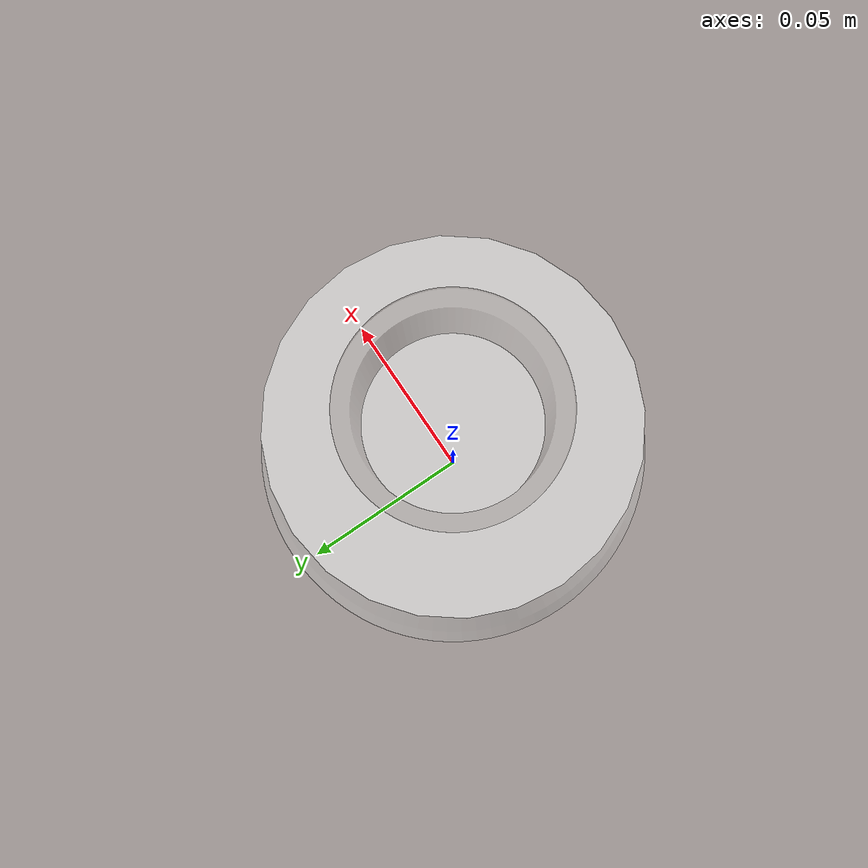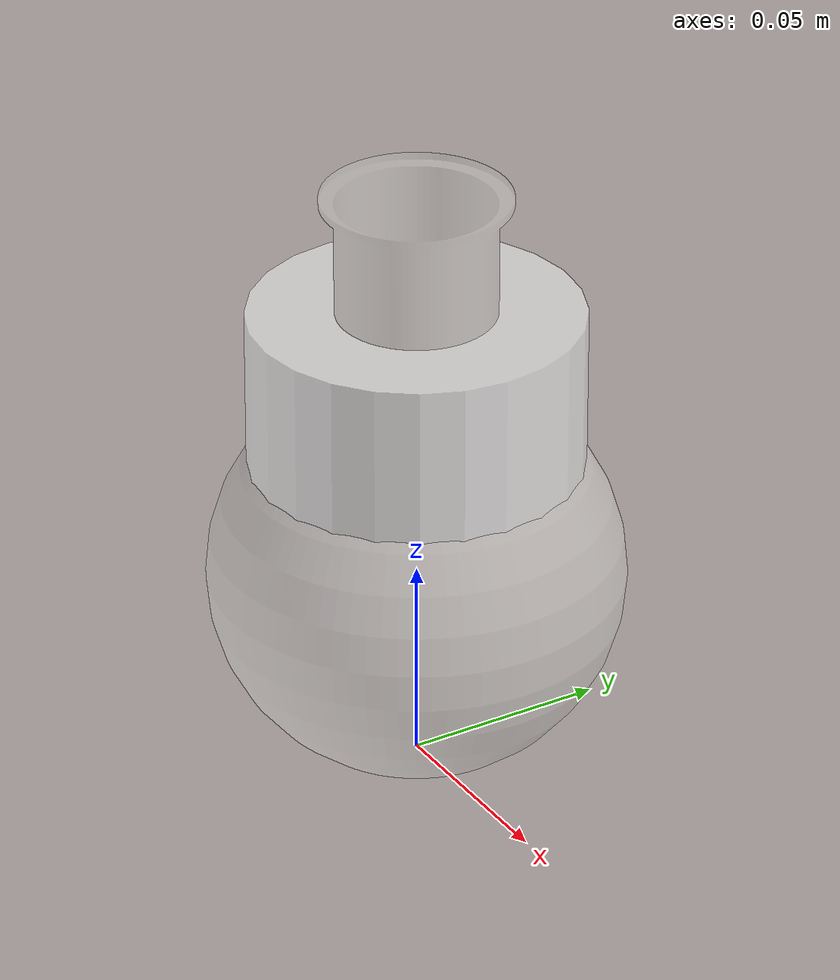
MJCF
<?xml version="1.0" ?>
<mujoco model="florence_flask">
  <asset>
    <material name="glass_florence_flask" specular="0.4" shininess="0.001" rgba="1 1 1 0.3"/>
    <mesh file="florence_flask.obj" scale="0.022874139257576805 0.022874139257576805 0.022874139257576805"/>
    <mesh file="florence_flask/florence_flask_collision_0.obj" scale="0.022874139257576805 0.022874139257576805 0.022874139257576805"/>
    <mesh file="florence_flask/florence_flask_collision_1.obj" scale="0.022874139257576805 0.022874139257576805 0.022874139257576805"/>
    <mesh file="florence_flask/florence_flask_collision_2.obj" scale="0.022874139257576805 0.022874139257576805 0.022874139257576805"/>
    <mesh file="florence_flask/florence_flask_collision_3.obj" scale="0.022874139257576805 0.022874139257576805 0.022874139257576805"/>
    <mesh file="florence_flask/florence_flask_collision_4.obj" scale="0.022874139257576805 0.022874139257576805 0.022874139257576805"/>
    <mesh file="florence_flask/florence_flask_collision_5.obj" scale="0.022874139257576805 0.022874139257576805 0.022874139257576805"/>
    <mesh file="florence_flask/florence_flask_collision_6.obj" scale="0.022874139257576805 0.022874139257576805 0.022874139257576805"/>
    <mesh file="florence_flask/florence_flask_collision_7.obj" scale="0.022874139257576805 0.022874139257576805 0.022874139257576805"/>
    <mesh file="florence_flask/florence_flask_collision_8.obj" scale="0.022874139257576805 0.022874139257576805 0.022874139257576805"/>
    <mesh file="florence_flask/florence_flask_collision_9.obj" scale="0.022874139257576805 0.022874139257576805 0.022874139257576805"/>
    <mesh file="florence_flask/florence_flask_collision_10.obj" scale="0.022874139257576805 0.022874139257576805 0.022874139257576805"/>
    <mesh file="florence_flask/florence_flask_collision_11.obj" scale="0.022874139257576805 0.022874139257576805 0.022874139257576805"/>
    <mesh file="florence_flask/florence_flask_collision_12.obj" scale="0.022874139257576805 0.022874139257576805 0.022874139257576805"/>
    <mesh file="florence_flask/florence_flask_collision_13.obj" scale="0.022874139257576805 0.022874139257576805 0.022874139257576805"/>
    <mesh file="florence_flask/florence_flask_collision_14.obj" scale="0.022874139257576805 0.022874139257576805 0.022874139257576805"/>
    <mesh file="florence_flask/florence_flask_collision_15.obj" scale="0.022874139257576805 0.022874139257576805 0.022874139257576805"/>
    <mesh file="florence_flask/florence_flask_collision_16.obj" scale="0.022874139257576805 0.022874139257576805 0.022874139257576805"/>
    <mesh file="florence_flask/florence_flask_collision_17.obj" scale="0.022874139257576805 0.022874139257576805 0.022874139257576805"/>
    <mesh file="florence_flask/florence_flask_collision_18.obj" scale="0.022874139257576805 0.022874139257576805 0.022874139257576805"/>
    <mesh file="florence_flask/florence_flask_collision_19.obj" scale="0.022874139257576805 0.022874139257576805 0.022874139257576805"/>
    <mesh file="florence_flask/florence_flask_collision_20.obj" scale="0.022874139257576805 0.022874139257576805 0.022874139257576805"/>
    <mesh file="florence_flask/florence_flask_collision_21.obj" scale="0.022874139257576805 0.022874139257576805 0.022874139257576805"/>
    <mesh file="florence_flask/florence_flask_collision_22.obj" scale="0.022874139257576805 0.022874139257576805 0.022874139257576805"/>
    <mesh file="florence_flask/florence_flask_collision_23.obj" scale="0.022874139257576805 0.022874139257576805 0.022874139257576805"/>
    <mesh file="florence_flask/florence_flask_collision_24.obj" scale="0.022874139257576805 0.022874139257576805 0.022874139257576805"/>
    <mesh file="florence_flask/florence_flask_collision_25.obj" scale="0.022874139257576805 0.022874139257576805 0.022874139257576805"/>
    <mesh file="florence_flask/florence_flask_collision_26.obj" scale="0.022874139257576805 0.022874139257576805 0.022874139257576805"/>
    <mesh file="florence_flask/florence_flask_collision_27.obj" scale="0.022874139257576805 0.022874139257576805 0.022874139257576805"/>
    <mesh file="florence_flask/florence_flask_collision_28.obj" scale="0.022874139257576805 0.022874139257576805 0.022874139257576805"/>
    <mesh file="florence_flask/florence_flask_collision_29.obj" scale="0.022874139257576805 0.022874139257576805 0.022874139257576805"/>
    <mesh file="florence_flask/florence_flask_collision_30.obj" scale="0.022874139257576805 0.022874139257576805 0.022874139257576805"/>
    <mesh file="florence_flask/florence_flask_collision_31.obj" scale="0.022874139257576805 0.022874139257576805 0.022874139257576805"/>
    <mesh file="florence_flask/florence_flask_collision_32.obj" scale="0.022874139257576805 0.022874139257576805 0.022874139257576805"/>
    <mesh file="florence_flask/florence_flask_collision_33.obj" scale="0.022874139257576805 0.022874139257576805 0.022874139257576805"/>
    <mesh file="florence_flask/florence_flask_collision_34.obj" scale="0.022874139257576805 0.022874139257576805 0.022874139257576805"/>
    <mesh file="florence_flask/florence_flask_collision_35.obj" scale="0.022874139257576805 0.022874139257576805 0.022874139257576805"/>
    <mesh file="florence_flask/florence_flask_collision_36.obj" scale="0.022874139257576805 0.022874139257576805 0.022874139257576805"/>
    <mesh file="florence_flask/florence_flask_collision_37.obj" scale="0.022874139257576805 0.022874139257576805 0.022874139257576805"/>
    <mesh file="florence_flask/florence_flask_collision_38.obj" scale="0.022874139257576805 0.022874139257576805 0.022874139257576805"/>
    <mesh file="florence_flask/florence_flask_collision_39.obj" scale="0.022874139257576805 0.022874139257576805 0.022874139257576805"/>
    <mesh file="florence_flask/florence_flask_collision_40.obj" scale="0.022874139257576805 0.022874139257576805 0.022874139257576805"/>
    <mesh file="florence_flask/florence_flask_collision_41.obj" scale="0.022874139257576805 0.022874139257576805 0.022874139257576805"/>
    <mesh file="florence_flask/florence_flask_collision_42.obj" scale="0.022874139257576805 0.022874139257576805 0.022874139257576805"/>
    <mesh file="florence_flask/florence_flask_collision_43.obj" scale="0.022874139257576805 0.022874139257576805 0.022874139257576805"/>
    <mesh file="florence_flask/florence_flask_collision_44.obj" scale="0.022874139257576805 0.022874139257576805 0.022874139257576805"/>
    <mesh file="florence_flask/florence_flask_collision_45.obj" scale="0.022874139257576805 0.022874139257576805 0.022874139257576805"/>
    <mesh file="florence_flask/florence_flask_collision_46.obj" scale="0.022874139257576805 0.022874139257576805 0.022874139257576805"/>
    <mesh file="florence_flask/florence_flask_collision_47.obj" scale="0.022874139257576805 0.022874139257576805 0.022874139257576805"/>
    <mesh file="florence_flask/florence_flask_collision_48.obj" scale="0.022874139257576805 0.022874139257576805 0.022874139257576805"/>
    <mesh file="florence_flask/florence_flask_collision_49.obj" scale="0.022874139257576805 0.022874139257576805 0.022874139257576805"/>
    <mesh file="florence_flask/florence_flask_collision_50.obj" scale="0.022874139257576805 0.022874139257576805 0.022874139257576805"/>
    <mesh file="florence_flask/florence_flask_collision_51.obj" scale="0.022874139257576805 0.022874139257576805 0.022874139257576805"/>
    <mesh file="florence_flask/florence_flask_collision_52.obj" scale="0.022874139257576805 0.022874139257576805 0.022874139257576805"/>
    <mesh file="florence_flask/florence_flask_collision_53.obj" scale="0.022874139257576805 0.022874139257576805 0.022874139257576805"/>
    <mesh file="florence_flask/florence_flask_collision_54.obj" scale="0.022874139257576805 0.022874139257576805 0.022874139257576805"/>
    <mesh file="florence_flask/florence_flask_collision_55.obj" scale="0.022874139257576805 0.022874139257576805 0.022874139257576805"/>
    <mesh file="florence_flask/florence_flask_collision_56.obj" scale="0.022874139257576805 0.022874139257576805 0.022874139257576805"/>
    <mesh file="florence_flask/florence_flask_collision_57.obj" scale="0.022874139257576805 0.022874139257576805 0.022874139257576805"/>
    <mesh file="florence_flask/florence_flask_collision_58.obj" scale="0.022874139257576805 0.022874139257576805 0.022874139257576805"/>
    <mesh file="florence_flask/florence_flask_collision_59.obj" scale="0.022874139257576805 0.022874139257576805 0.022874139257576805"/>
    <mesh file="florence_flask/florence_flask_collision_60.obj" scale="0.022874139257576805 0.022874139257576805 0.022874139257576805"/>
    <mesh file="florence_flask/florence_flask_collision_61.obj" scale="0.022874139257576805 0.022874139257576805 0.022874139257576805"/>
    <mesh file="florence_flask/florence_flask_collision_62.obj" scale="0.022874139257576805 0.022874139257576805 0.022874139257576805"/>
    <mesh file="florence_flask/florence_flask_collision_63.obj" scale="0.022874139257576805 0.022874139257576805 0.022874139257576805"/>
    <mesh file="florence_flask/florence_flask_collision_64.obj" scale="0.022874139257576805 0.022874139257576805 0.022874139257576805"/>
    <mesh file="florence_flask/florence_flask_collision_65.obj" scale="0.022874139257576805 0.022874139257576805 0.022874139257576805"/>
    <mesh file="florence_flask/florence_flask_collision_66.obj" scale="0.022874139257576805 0.022874139257576805 0.022874139257576805"/>
    <mesh file="florence_flask/florence_flask_collision_67.obj" scale="0.022874139257576805 0.022874139257576805 0.022874139257576805"/>
    <mesh file="florence_flask/florence_flask_collision_68.obj" scale="0.022874139257576805 0.022874139257576805 0.022874139257576805"/>
    <mesh file="florence_flask/florence_flask_collision_69.obj" scale="0.022874139257576805 0.022874139257576805 0.022874139257576805"/>
    <mesh file="florence_flask/florence_flask_collision_70.obj" scale="0.022874139257576805 0.022874139257576805 0.022874139257576805"/>
    <mesh file="florence_flask/florence_flask_collision_71.obj" scale="0.022874139257576805 0.022874139257576805 0.022874139257576805"/>
    <mesh file="florence_flask/florence_flask_collision_72.obj" scale="0.022874139257576805 0.022874139257576805 0.022874139257576805"/>
    <mesh file="florence_flask/florence_flask_collision_73.obj" scale="0.022874139257576805 0.022874139257576805 0.022874139257576805"/>
    <mesh file="florence_flask/florence_flask_collision_74.obj" scale="0.022874139257576805 0.022874139257576805 0.022874139257576805"/>
    <mesh file="florence_flask/florence_flask_collision_75.obj" scale="0.022874139257576805 0.022874139257576805 0.022874139257576805"/>
    <mesh file="florence_flask/florence_flask_collision_76.obj" scale="0.022874139257576805 0.022874139257576805 0.022874139257576805"/>
      <material name="CaSO4" rgba="1 1 1 0.7"/>
    <material name="CuCl2" rgba="0.141 1.0 0.174 0.4"/>
    <material name="CuSO4" rgba="0 0.45 1 0.4"/>
    <material name="FeCl3" rgba="0.6475 0.5686 0.023 0.4"/>
    <material name="KMnO4" rgba="0.5 0 0.5 0.4"/>
    <material name="I2" rgba="0.3 0.13 0.0 0.4"/>
    <material name="K2CrO4" rgba="0.57 0.12 0.013 0.4"/>
    <material name="NaCl" rgba="1 1 1 0.3"/>
</asset>
  <worldbody>
    <body name="florence_flask">
      <inertial pos="0 0 0.075000" mass="0.02" diaginertia="0.0008 0.0008 0.0005"/>
      <geom material="glass_florence_flask" mesh="florence_flask" class="visual"/>
      <geom mesh="florence_flask_collision_0"  class="collision"/>
      <geom mesh="florence_flask_collision_1"  class="collision"/>
      <geom mesh="florence_flask_collision_2"  class="collision"/>
      <geom mesh="florence_flask_collision_3"  class="collision"/>
      <geom mesh="florence_flask_collision_4"  class="collision"/>
      <geom mesh="florence_flask_collision_5"  class="collision"/>
      <geom mesh="florence_flask_collision_6"  class="collision"/>
      <geom mesh="florence_flask_collision_7"  class="collision"/>
      <geom mesh="florence_flask_collision_8"  class="collision"/>
      <geom mesh="florence_flask_collision_9"  class="collision"/>
      <geom mesh="florence_flask_collision_10"  class="collision"/>
      <geom mesh="florence_flask_collision_11"  class="collision"/>
      <geom mesh="florence_flask_collision_12"  class="collision"/>
      <geom mesh="florence_flask_collision_13"  class="collision"/>
      <geom mesh="florence_flask_collision_14"  class="collision"/>
      <geom mesh="florence_flask_collision_15"  class="collision"/>
      <geom mesh="florence_flask_collision_16"  class="collision"/>
      <geom mesh="florence_flask_collision_17"  class="collision"/>
      <geom mesh="florence_flask_collision_18"  class="collision"/>
      <geom mesh="florence_flask_collision_19"  class="collision"/>
      <geom mesh="florence_flask_collision_20"  class="collision"/>
      <geom mesh="florence_flask_collision_21"  class="collision"/>
      <geom mesh="florence_flask_collision_22"  class="collision"/>
      <geom mesh="florence_flask_collision_23"  class="collision"/>
      <geom mesh="florence_flask_collision_24"  class="collision"/>
      <geom mesh="florence_flask_collision_25"  class="collision"/>
      <geom mesh="florence_flask_collision_26"  class="collision"/>
      <geom mesh="florence_flask_collision_27"  class="collision"/>
      <geom mesh="florence_flask_collision_28"  class="collision"/>
      <geom mesh="florence_flask_collision_29"  class="collision"/>
      <geom mesh="florence_flask_collision_30"  class="collision"/>
      <geom mesh="florence_flask_collision_31"  class="collision"/>
      <geom mesh="florence_flask_collision_32"  class="collision"/>
      <geom mesh="florence_flask_collision_33"  class="collision"/>
      <geom mesh="florence_flask_collision_34"  class="collision"/>
      <geom mesh="florence_flask_collision_35"  class="collision"/>
      <geom mesh="florence_flask_collision_36"  class="collision"/>
      <geom mesh="florence_flask_collision_37"  class="collision"/>
      <geom mesh="florence_flask_collision_38"  class="collision"/>
      <geom mesh="florence_flask_collision_39"  class="collision"/>
      <geom mesh="florence_flask_collision_40"  class="collision"/>
      <geom mesh="florence_flask_collision_41"  class="collision"/>
      <geom mesh="florence_flask_collision_42"  class="collision"/>
      <geom mesh="florence_flask_collision_43"  class="collision"/>
      <geom mesh="florence_flask_collision_44"  class="collision"/>
      <geom mesh="florence_flask_collision_45"  class="collision"/>
      <geom mesh="florence_flask_collision_46"  class="collision"/>
      <geom mesh="florence_flask_collision_47"  class="collision"/>
      <geom mesh="florence_flask_collision_48"  class="collision"/>
      <geom mesh="florence_flask_collision_49"  class="collision"/>
      <geom mesh="florence_flask_collision_50"  class="collision"/>
      <geom mesh="florence_flask_collision_51"  class="collision"/>
      <geom mesh="florence_flask_collision_52"  class="collision"/>
      <geom mesh="florence_flask_collision_53"  class="collision"/>
      <geom mesh="florence_flask_collision_54"  class="collision"/>
      <geom mesh="florence_flask_collision_55"  class="collision"/>
      <geom mesh="florence_flask_collision_56"  class="collision"/>
      <geom mesh="florence_flask_collision_57"  class="collision"/>
      <geom mesh="florence_flask_collision_58"  class="collision"/>
      <geom mesh="florence_flask_collision_59"  class="collision"/>
      <geom mesh="florence_flask_collision_60"  class="collision"/>
      <geom mesh="florence_flask_collision_61"  class="collision"/>
      <geom mesh="florence_flask_collision_62"  class="collision"/>
      <geom mesh="florence_flask_collision_63"  class="collision"/>
      <geom mesh="florence_flask_collision_64"  class="collision"/>
      <geom mesh="florence_flask_collision_65"  class="collision"/>
      <geom mesh="florence_flask_collision_66"  class="collision"/>
      <geom mesh="florence_flask_collision_67"  class="collision"/>
      <geom mesh="florence_flask_collision_68"  class="collision"/>
      <geom mesh="florence_flask_collision_69"  class="collision"/>
      <geom mesh="florence_flask_collision_70"  class="collision"/>
      <geom mesh="florence_flask_collision_71"  class="collision"/>
      <geom mesh="florence_flask_collision_72"  class="collision"/>
      <geom mesh="florence_flask_collision_73"  class="collision"/>
      <geom mesh="florence_flask_collision_74"  class="collision"/>
      <geom mesh="florence_flask_collision_75"  class="collision"/>
      <geom mesh="florence_flask_collision_76"  class="collision"/>
      <site class="grasppoint" pos="0.0000 0.0000 0.0900"/>
      <site class="grasppoint" pos="0.0000 0.0000 0.1200"/>
      <site class="grasppoint" pos="0.0000 0.0000 0.1425"/>
          <geom name="solution" type="cylinder" size="0.04034 0.04500" pos="0.00000 0.00000 0.07500" material="CaSO4" class="visual"/>
      <site name="top_site" pos="0.00000 0.00000 0.15000" size="0.01" rgba="1 0 0 0"/>
      <site name="bottom_site" pos="0 0 0.000000" size="0.01" rgba="0 1 0 0"/>
</body>
  </worldbody>
  <compiler boundmass="0.015" boundinertia="1e-05" angle="radian"/>
  <default>
    <default class="visual">
      <geom group="2" type="mesh" contype="0" conaffinity="0" density="50"/>
    </default>
    <default class="collision">
      <geom group="3" type="mesh" density="50" friction="1 1 0.001" solimp="0.9 0.95 0.001" solref="0.02 1"/>
    </default>
    <default class="grasppoint">
      <site type="sphere" size="0.005" group="4" rgba="0 0 1 1"/>
    </default>
  </default>
</mujoco>
